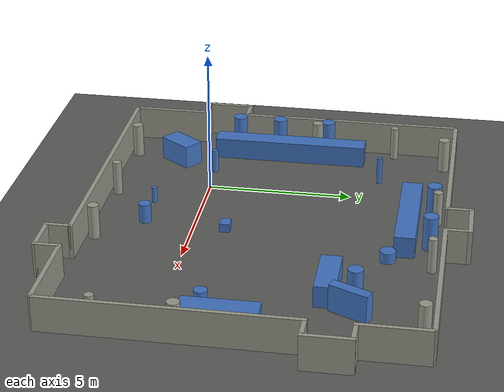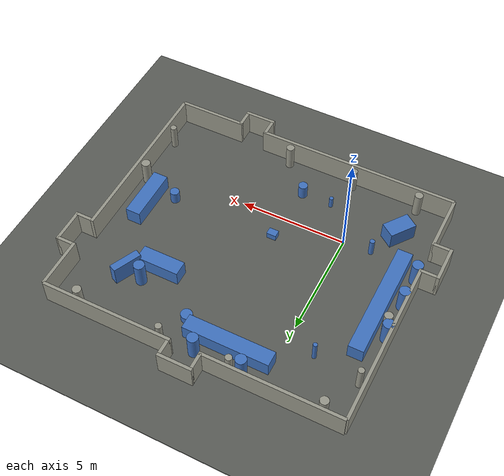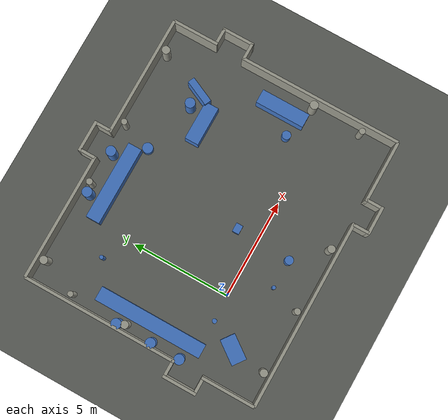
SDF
<sdf version="1.9">
 <world name="default">
  <model name="track_feature">
   <static>true</static>
   <link name="feature_link">
    <collision name="feat_box_2_collision">
     <pose>7.757710 5.823984 0.472198 0.000000 0.000000 1.136605</pose>
     <geometry><box><size>1.369153 0.357167 0.944397</size></box></geometry>
    </collision>
    <visual name="feat_box_2_visual">
     <pose>7.757710 5.823984 0.472198 0.000000 0.000000 1.136605</pose>
     <geometry><box><size>1.369153 0.357167 0.944397</size></box></geometry>
     <material><ambient>0.25 0.45 0.75 1</ambient><diffuse>0.25 0.45 0.75 1</diffuse></material>
    </visual>
    <collision name="feat_box_6_collision">
     <pose>-2.024471 -1.446810 0.414715 0.000000 0.000000 0.939065</pose>
     <geometry><box><size>1.286521 0.748022 0.829431</size></box></geometry>
    </collision>
    <visual name="feat_box_6_visual">
     <pose>-2.024471 -1.446810 0.414715 0.000000 0.000000 0.939065</pose>
     <geometry><box><size>1.286521 0.748022 0.829431</size></box></geometry>
     <material><ambient>0.25 0.45 0.75 1</ambient><diffuse>0.25 0.45 0.75 1</diffuse></material>
    </visual>
    <collision name="landmark_0_collision">
     <pose>-2.800000 2.500000 0.375000 0.000000 0.000000 0.000000</pose>
     <geometry><box><size>0.700000 5.500000 0.750000</size></box></geometry>
    </collision>
    <visual name="landmark_0_visual">
     <pose>-2.800000 2.500000 0.375000 0.000000 0.000000 0.000000</pose>
     <geometry><box><size>0.700000 5.500000 0.750000</size></box></geometry>
     <material><ambient>0.25 0.45 0.75 1</ambient><diffuse>0.25 0.45 0.75 1</diffuse></material>
    </visual>
    <collision name="landmark_1_collision">
     <pose>2.000000 7.200000 0.375000 0.000000 0.000000 0.000000</pose>
     <geometry><box><size>4.000000 0.700000 0.750000</size></box></geometry>
    </collision>
    <visual name="landmark_1_visual">
     <pose>2.000000 7.200000 0.375000 0.000000 0.000000 0.000000</pose>
     <geometry><box><size>4.000000 0.700000 0.750000</size></box></geometry>
     <material><ambient>0.25 0.45 0.75 1</ambient><diffuse>0.25 0.45 0.75 1</diffuse></material>
    </visual>
    <collision name="landmark_2_collision">
     <pose>6.500000 5.000000 0.375000 0.000000 0.000000 0.000000</pose>
     <geometry><box><size>2.000000 0.700000 0.750000</size></box></geometry>
    </collision>
    <visual name="landmark_2_visual">
     <pose>6.500000 5.000000 0.375000 0.000000 0.000000 0.000000</pose>
     <geometry><box><size>2.000000 0.700000 0.750000</size></box></geometry>
     <material><ambient>0.25 0.45 0.75 1</ambient><diffuse>0.25 0.45 0.75 1</diffuse></material>
    </visual>
    <collision name="landmark_3_collision">
     <pose>9.000000 2.000000 0.375000 0.000000 0.000000 0.000000</pose>
     <geometry><box><size>0.700000 2.500000 0.750000</size></box></geometry>
    </collision>
    <visual name="landmark_3_visual">
     <pose>9.000000 2.000000 0.375000 0.000000 0.000000 0.000000</pose>
     <geometry><box><size>0.700000 2.500000 0.750000</size></box></geometry>
     <material><ambient>0.25 0.45 0.75 1</ambient><diffuse>0.25 0.45 0.75 1</diffuse></material>
    </visual>
    <collision name="landmark_10_collision">
     <pose>3.000000 1.100000 0.150000 0.000000 0.000000 0.000000</pose>
     <geometry><box><size>0.450000 0.350000 0.300000</size></box></geometry>
    </collision>
    <visual name="landmark_10_visual">
     <pose>3.000000 1.100000 0.150000 0.000000 0.000000 0.000000</pose>
     <geometry><box><size>0.450000 0.350000 0.300000</size></box></geometry>
     <material><ambient>0.25 0.45 0.75 1</ambient><diffuse>0.25 0.45 0.75 1</diffuse></material>
    </visual>
    <collision name="feat_cyl_1_collision">
     <pose>7.984504 1.234789 0.300090 0.000000 0.000000 0.000000</pose>
     <geometry><cylinder><radius>0.217820</radius><length>0.600179</length></cylinder></geometry>
    </collision>
    <visual name="feat_cyl_1_visual">
     <pose>7.984504 1.234789 0.300090 0.000000 0.000000 0.000000</pose>
     <geometry><cylinder><radius>0.217820</radius><length>0.600179</length></cylinder></geometry>
     <material><ambient>0.25 0.45 0.75 1</ambient><diffuse>0.25 0.45 0.75 1</diffuse></material>
    </visual>
    <collision name="feat_cyl_3_collision">
     <pose>2.834560 -1.722751 0.340881 0.000000 0.000000 0.000000</pose>
     <geometry><cylinder><radius>0.213408</radius><length>0.681762</length></cylinder></geometry>
    </collision>
    <visual name="feat_cyl_3_visual">
     <pose>2.834560 -1.722751 0.340881 0.000000 0.000000 0.000000</pose>
     <geometry><cylinder><radius>0.213408</radius><length>0.681762</length></cylinder></geometry>
     <material><ambient>0.25 0.45 0.75 1</ambient><diffuse>0.25 0.45 0.75 1</diffuse></material>
    </visual>
    <collision name="feat_cyl_4_collision">
     <pose>-1.305083 -0.057571 0.416565 0.000000 0.000000 0.000000</pose>
     <geometry><cylinder><radius>0.114796</radius><length>0.833129</length></cylinder></geometry>
    </collision>
    <visual name="feat_cyl_4_visual">
     <pose>-1.305083 -0.057571 0.416565 0.000000 0.000000 0.000000</pose>
     <geometry><cylinder><radius>0.114796</radius><length>0.833129</length></cylinder></geometry>
     <material><ambient>0.25 0.45 0.75 1</ambient><diffuse>0.25 0.45 0.75 1</diffuse></material>
    </visual>
    <collision name="feat_cyl_5_collision">
     <pose>4.268548 6.696389 0.189830 0.000000 0.000000 0.000000</pose>
     <geometry><cylinder><radius>0.263632</radius><length>0.379660</length></cylinder></geometry>
    </collision>
    <visual name="feat_cyl_5_visual">
     <pose>4.268548 6.696389 0.189830 0.000000 0.000000 0.000000</pose>
     <geometry><cylinder><radius>0.263632</radius><length>0.379660</length></cylinder></geometry>
     <material><ambient>0.25 0.45 0.75 1</ambient><diffuse>0.25 0.45 0.75 1</diffuse></material>
    </visual>
    <collision name="feat_cyl_7_collision">
     <pose>-1.298939 5.929700 0.489099 0.000000 0.000000 0.000000</pose>
     <geometry><cylinder><radius>0.096327</radius><length>0.978199</length></cylinder></geometry>
    </collision>
    <visual name="feat_cyl_7_visual">
     <pose>-1.298939 5.929700 0.489099 0.000000 0.000000 0.000000</pose>
     <geometry><cylinder><radius>0.096327</radius><length>0.978199</length></cylinder></geometry>
     <material><ambient>0.25 0.45 0.75 1</ambient><diffuse>0.25 0.45 0.75 1</diffuse></material>
    </visual>
    <collision name="feat_cyl_8_collision">
     <pose>1.389119 -1.712532 0.274791 0.000000 0.000000 0.000000</pose>
     <geometry><cylinder><radius>0.094864</radius><length>0.549582</length></cylinder></geometry>
    </collision>
    <visual name="feat_cyl_8_visual">
     <pose>1.389119 -1.712532 0.274791 0.000000 0.000000 0.000000</pose>
     <geometry><cylinder><radius>0.094864</radius><length>0.549582</length></cylinder></geometry>
     <material><ambient>0.25 0.45 0.75 1</ambient><diffuse>0.25 0.45 0.75 1</diffuse></material>
    </visual>
    <collision name="landmark_4_collision">
     <pose>-3.600000 0.500000 0.600000 0.000000 0.000000 0.000000</pose>
     <geometry><cylinder><radius>0.250000</radius><length>1.200000</length></cylinder></geometry>
    </collision>
    <visual name="landmark_4_visual">
     <pose>-3.600000 0.500000 0.600000 0.000000 0.000000 0.000000</pose>
     <geometry><cylinder><radius>0.250000</radius><length>1.200000</length></cylinder></geometry>
     <material><ambient>0.25 0.45 0.75 1</ambient><diffuse>0.25 0.45 0.75 1</diffuse></material>
    </visual>
    <collision name="landmark_5_collision">
     <pose>-3.600000 2.000000 0.600000 0.000000 0.000000 0.000000</pose>
     <geometry><cylinder><radius>0.250000</radius><length>1.200000</length></cylinder></geometry>
    </collision>
    <visual name="landmark_5_visual">
     <pose>-3.600000 2.000000 0.600000 0.000000 0.000000 0.000000</pose>
     <geometry><cylinder><radius>0.250000</radius><length>1.200000</length></cylinder></geometry>
     <material><ambient>0.25 0.45 0.75 1</ambient><diffuse>0.25 0.45 0.75 1</diffuse></material>
    </visual>
    <collision name="landmark_6_collision">
     <pose>-3.600000 3.800000 0.600000 0.000000 0.000000 0.000000</pose>
     <geometry><cylinder><radius>0.250000</radius><length>1.200000</length></cylinder></geometry>
    </collision>
    <visual name="landmark_6_visual">
     <pose>-3.600000 3.800000 0.600000 0.000000 0.000000 0.000000</pose>
     <geometry><cylinder><radius>0.250000</radius><length>1.200000</length></cylinder></geometry>
     <material><ambient>0.25 0.45 0.75 1</ambient><diffuse>0.25 0.45 0.75 1</diffuse></material>
    </visual>
    <collision name="landmark_7_collision">
     <pose>1.000000 8.000000 0.600000 0.000000 0.000000 0.000000</pose>
     <geometry><cylinder><radius>0.250000</radius><length>1.200000</length></cylinder></geometry>
    </collision>
    <visual name="landmark_7_visual">
     <pose>1.000000 8.000000 0.600000 0.000000 0.000000 0.000000</pose>
     <geometry><cylinder><radius>0.250000</radius><length>1.200000</length></cylinder></geometry>
     <material><ambient>0.25 0.45 0.75 1</ambient><diffuse>0.25 0.45 0.75 1</diffuse></material>
    </visual>
    <collision name="landmark_8_collision">
     <pose>3.200000 8.000000 0.600000 0.000000 0.000000 0.000000</pose>
     <geometry><cylinder><radius>0.250000</radius><length>1.200000</length></cylinder></geometry>
    </collision>
    <visual name="landmark_8_visual">
     <pose>3.200000 8.000000 0.600000 0.000000 0.000000 0.000000</pose>
     <geometry><cylinder><radius>0.250000</radius><length>1.200000</length></cylinder></geometry>
     <material><ambient>0.25 0.45 0.75 1</ambient><diffuse>0.25 0.45 0.75 1</diffuse></material>
    </visual>
    <collision name="landmark_9_collision">
     <pose>7.000000 5.900000 0.600000 0.000000 0.000000 0.000000</pose>
     <geometry><cylinder><radius>0.250000</radius><length>1.200000</length></cylinder></geometry>
    </collision>
    <visual name="landmark_9_visual">
     <pose>7.000000 5.900000 0.600000 0.000000 0.000000 0.000000</pose>
     <geometry><cylinder><radius>0.250000</radius><length>1.200000</length></cylinder></geometry>
     <material><ambient>0.25 0.45 0.75 1</ambient><diffuse>0.25 0.45 0.75 1</diffuse></material>
    </visual>
   </link>
  </model>
  <model name="track_ground">
   <static>true</static>
   <link name="ground_link">
    <collision name="ground_collision">
     <pose>2.604407 1.885509 -0.025000 0.000000 0.000000 0.000000</pose>
     <geometry><box><size>80.000000 80.000000 0.050000</size></box></geometry>
     <surface>
      <friction><ode><mu>1.2</mu><mu2>1.2</mu2></ode></friction>
      <contact><ode><kp>100000.0</kp><kd>10.0</kd></ode></contact>
     </surface>
    </collision>
    <visual name="ground_visual">
     <pose>2.604407 1.885509 -0.025000 0.000000 0.000000 0.000000</pose>
     <geometry><box><size>80.000000 80.000000 0.050000</size></box></geometry>
     <material><ambient>0.35 0.36 0.34 1</ambient><diffuse>0.35 0.36 0.34 1</diffuse></material>
    </visual>
   </link>
  </model>
  <model name="track_room">
   <static>true</static>
   <link name="room_link">
    <collision name="hall_0_0_collision">
     <pose>0.978934 -3.500000 0.600000 0.000000 0.000000 0.000000</pose>
     <geometry><box><size>9.557868 0.150000 1.200000</size></box></geometry>
    </collision>
    <visual name="hall_0_0_visual">
     <pose>0.978934 -3.500000 0.600000 0.000000 0.000000 0.000000</pose>
     <geometry><box><size>9.557868 0.150000 1.200000</size></box></geometry>
     <material><ambient>0.6 0.6 0.55 1</ambient><diffuse>0.6 0.6 0.55 1</diffuse></material>
    </visual>
    <collision name="hall_0_107_collision">
     <pose>8.510477 -3.500000 0.600000 0.000000 0.000000 0.000000</pose>
     <geometry><box><size>3.179045 0.150000 1.200000</size></box></geometry>
    </collision>
    <visual name="hall_0_107_visual">
     <pose>8.510477 -3.500000 0.600000 0.000000 0.000000 0.000000</pose>
     <geometry><box><size>3.179045 0.150000 1.200000</size></box></geometry>
     <material><ambient>0.6 0.6 0.55 1</ambient><diffuse>0.6 0.6 0.55 1</diffuse></material>
    </visual>
    <collision name="hall_niche_0_collision">
     <pose>6.339411 -4.300000 0.600000 0.000000 0.000000 0.000000</pose>
     <geometry><box><size>1.463087 0.150000 1.200000</size></box></geometry>
    </collision>
    <visual name="hall_niche_0_visual">
     <pose>6.339411 -4.300000 0.600000 0.000000 0.000000 0.000000</pose>
     <geometry><box><size>1.463087 0.150000 1.200000</size></box></geometry>
     <material><ambient>0.6 0.6 0.55 1</ambient><diffuse>0.6 0.6 0.55 1</diffuse></material>
    </visual>
    <collision name="hall_jamb_0_-1_collision">
     <pose>5.682868 -3.900000 0.600000 0.000000 0.000000 0.000000</pose>
     <geometry><box><size>0.150000 0.800000 1.200000</size></box></geometry>
    </collision>
    <visual name="hall_jamb_0_-1_visual">
     <pose>5.682868 -3.900000 0.600000 0.000000 0.000000 0.000000</pose>
     <geometry><box><size>0.150000 0.800000 1.200000</size></box></geometry>
     <material><ambient>0.6 0.6 0.55 1</ambient><diffuse>0.6 0.6 0.55 1</diffuse></material>
    </visual>
    <collision name="hall_jamb_0_1_collision">
     <pose>6.995955 -3.900000 0.600000 0.000000 0.000000 0.000000</pose>
     <geometry><box><size>0.150000 0.800000 1.200000</size></box></geometry>
    </collision>
    <visual name="hall_jamb_0_1_visual">
     <pose>6.995955 -3.900000 0.600000 0.000000 0.000000 0.000000</pose>
     <geometry><box><size>0.150000 0.800000 1.200000</size></box></geometry>
     <material><ambient>0.6 0.6 0.55 1</ambient><diffuse>0.6 0.6 0.55 1</diffuse></material>
    </visual>
    <collision name="hall_1_0_collision">
     <pose>10.100000 0.654623 0.600000 0.000000 0.000000 1.570796</pose>
     <geometry><box><size>8.309245 0.150000 1.200000</size></box></geometry>
    </collision>
    <visual name="hall_1_0_visual">
     <pose>10.100000 0.654623 0.600000 0.000000 0.000000 1.570796</pose>
     <geometry><box><size>8.309245 0.150000 1.200000</size></box></geometry>
     <material><ambient>0.6 0.6 0.55 1</ambient><diffuse>0.6 0.6 0.55 1</diffuse></material>
    </visual>
    <collision name="hall_1_96_collision">
     <pose>10.100000 7.328956 0.600000 0.000000 0.000000 1.570796</pose>
     <geometry><box><size>2.342089 0.150000 1.200000</size></box></geometry>
    </collision>
    <visual name="hall_1_96_visual">
     <pose>10.100000 7.328956 0.600000 0.000000 0.000000 1.570796</pose>
     <geometry><box><size>2.342089 0.150000 1.200000</size></box></geometry>
     <material><ambient>0.6 0.6 0.55 1</ambient><diffuse>0.6 0.6 0.55 1</diffuse></material>
    </visual>
    <collision name="hall_niche_1_collision">
     <pose>10.900000 5.483578 0.600000 0.000000 0.000000 1.570796</pose>
     <geometry><box><size>1.648666 0.150000 1.200000</size></box></geometry>
    </collision>
    <visual name="hall_niche_1_visual">
     <pose>10.900000 5.483578 0.600000 0.000000 0.000000 1.570796</pose>
     <geometry><box><size>1.648666 0.150000 1.200000</size></box></geometry>
     <material><ambient>0.6 0.6 0.55 1</ambient><diffuse>0.6 0.6 0.55 1</diffuse></material>
    </visual>
    <collision name="hall_jamb_1_-1_collision">
     <pose>10.500000 4.734245 0.600000 0.000000 0.000000 1.570796</pose>
     <geometry><box><size>0.150000 0.800000 1.200000</size></box></geometry>
    </collision>
    <visual name="hall_jamb_1_-1_visual">
     <pose>10.500000 4.734245 0.600000 0.000000 0.000000 1.570796</pose>
     <geometry><box><size>0.150000 0.800000 1.200000</size></box></geometry>
     <material><ambient>0.6 0.6 0.55 1</ambient><diffuse>0.6 0.6 0.55 1</diffuse></material>
    </visual>
    <collision name="hall_jamb_1_1_collision">
     <pose>10.500000 6.232911 0.600000 0.000000 0.000000 1.570796</pose>
     <geometry><box><size>0.150000 0.800000 1.200000</size></box></geometry>
    </collision>
    <visual name="hall_jamb_1_1_visual">
     <pose>10.500000 6.232911 0.600000 0.000000 0.000000 1.570796</pose>
     <geometry><box><size>0.150000 0.800000 1.200000</size></box></geometry>
     <material><ambient>0.6 0.6 0.55 1</ambient><diffuse>0.6 0.6 0.55 1</diffuse></material>
    </visual>
    <collision name="hall_2_0_collision">
     <pose>7.025139 8.500000 0.600000 0.000000 0.000000 3.141593</pose>
     <geometry><box><size>6.149723 0.150000 1.200000</size></box></geometry>
    </collision>
    <visual name="hall_2_0_visual">
     <pose>7.025139 8.500000 0.600000 0.000000 0.000000 3.141593</pose>
     <geometry><box><size>6.149723 0.150000 1.200000</size></box></geometry>
     <material><ambient>0.6 0.6 0.55 1</ambient><diffuse>0.6 0.6 0.55 1</diffuse></material>
    </visual>
    <collision name="hall_2_74_collision">
     <pose>-0.582514 8.500000 0.600000 0.000000 0.000000 3.141593</pose>
     <geometry><box><size>6.434973 0.150000 1.200000</size></box></geometry>
    </collision>
    <visual name="hall_2_74_visual">
     <pose>-0.582514 8.500000 0.600000 0.000000 0.000000 3.141593</pose>
     <geometry><box><size>6.434973 0.150000 1.200000</size></box></geometry>
     <material><ambient>0.6 0.6 0.55 1</ambient><diffuse>0.6 0.6 0.55 1</diffuse></material>
    </visual>
    <collision name="hall_niche_2_collision">
     <pose>3.292625 9.300000 0.600000 0.000000 0.000000 3.141593</pose>
     <geometry><box><size>1.615304 0.150000 1.200000</size></box></geometry>
    </collision>
    <visual name="hall_niche_2_visual">
     <pose>3.292625 9.300000 0.600000 0.000000 0.000000 3.141593</pose>
     <geometry><box><size>1.615304 0.150000 1.200000</size></box></geometry>
     <material><ambient>0.6 0.6 0.55 1</ambient><diffuse>0.6 0.6 0.55 1</diffuse></material>
    </visual>
    <collision name="hall_jamb_2_-1_collision">
     <pose>4.025277 8.900000 0.600000 0.000000 0.000000 3.141593</pose>
     <geometry><box><size>0.150000 0.800000 1.200000</size></box></geometry>
    </collision>
    <visual name="hall_jamb_2_-1_visual">
     <pose>4.025277 8.900000 0.600000 0.000000 0.000000 3.141593</pose>
     <geometry><box><size>0.150000 0.800000 1.200000</size></box></geometry>
     <material><ambient>0.6 0.6 0.55 1</ambient><diffuse>0.6 0.6 0.55 1</diffuse></material>
    </visual>
    <collision name="hall_jamb_2_1_collision">
     <pose>2.559973 8.900000 0.600000 0.000000 0.000000 3.141593</pose>
     <geometry><box><size>0.150000 0.800000 1.200000</size></box></geometry>
    </collision>
    <visual name="hall_jamb_2_1_visual">
     <pose>2.559973 8.900000 0.600000 0.000000 0.000000 3.141593</pose>
     <geometry><box><size>0.150000 0.800000 1.200000</size></box></geometry>
     <material><ambient>0.6 0.6 0.55 1</ambient><diffuse>0.6 0.6 0.55 1</diffuse></material>
    </visual>
    <collision name="hall_3_0_collision">
     <pose>-3.800000 4.570141 0.600000 0.000000 0.000000 -1.570796</pose>
     <geometry><box><size>7.859719 0.150000 1.200000</size></box></geometry>
    </collision>
    <visual name="hall_3_0_visual">
     <pose>-3.800000 4.570141 0.600000 0.000000 0.000000 -1.570796</pose>
     <geometry><box><size>7.859719 0.150000 1.200000</size></box></geometry>
     <material><ambient>0.6 0.6 0.55 1</ambient><diffuse>0.6 0.6 0.55 1</diffuse></material>
    </visual>
    <collision name="hall_3_92_collision">
     <pose>-3.800000 -2.143455 0.600000 0.000000 0.000000 -1.570796</pose>
     <geometry><box><size>2.713090 0.150000 1.200000</size></box></geometry>
    </collision>
    <visual name="hall_3_92_visual">
     <pose>-3.800000 -2.143455 0.600000 0.000000 0.000000 -1.570796</pose>
     <geometry><box><size>2.713090 0.150000 1.200000</size></box></geometry>
     <material><ambient>0.6 0.6 0.55 1</ambient><diffuse>0.6 0.6 0.55 1</diffuse></material>
    </visual>
    <collision name="hall_niche_3_collision">
     <pose>-4.600000 -0.073314 0.600000 0.000000 0.000000 -1.570796</pose>
     <geometry><box><size>1.727191 0.150000 1.200000</size></box></geometry>
    </collision>
    <visual name="hall_niche_3_visual">
     <pose>-4.600000 -0.073314 0.600000 0.000000 0.000000 -1.570796</pose>
     <geometry><box><size>1.727191 0.150000 1.200000</size></box></geometry>
     <material><ambient>0.6 0.6 0.55 1</ambient><diffuse>0.6 0.6 0.55 1</diffuse></material>
    </visual>
    <collision name="hall_jamb_3_-1_collision">
     <pose>-4.200000 0.715281 0.600000 0.000000 0.000000 -1.570796</pose>
     <geometry><box><size>0.150000 0.800000 1.200000</size></box></geometry>
    </collision>
    <visual name="hall_jamb_3_-1_visual">
     <pose>-4.200000 0.715281 0.600000 0.000000 0.000000 -1.570796</pose>
     <geometry><box><size>0.150000 0.800000 1.200000</size></box></geometry>
     <material><ambient>0.6 0.6 0.55 1</ambient><diffuse>0.6 0.6 0.55 1</diffuse></material>
    </visual>
    <collision name="hall_jamb_3_1_collision">
     <pose>-4.200000 -0.861910 0.600000 0.000000 0.000000 -1.570796</pose>
     <geometry><box><size>0.150000 0.800000 1.200000</size></box></geometry>
    </collision>
    <visual name="hall_jamb_3_1_visual">
     <pose>-4.200000 -0.861910 0.600000 0.000000 0.000000 -1.570796</pose>
     <geometry><box><size>0.150000 0.800000 1.200000</size></box></geometry>
     <material><ambient>0.6 0.6 0.55 1</ambient><diffuse>0.6 0.6 0.55 1</diffuse></material>
    </visual>
    <collision name="column_0_15_collision">
     <pose>-2.256256 -3.150000 0.600000 0.000000 0.000000 0.000000</pose>
     <geometry><cylinder><radius>0.188989</radius><length>1.200000</length></cylinder></geometry>
    </collision>
    <visual name="column_0_15_visual">
     <pose>-2.256256 -3.150000 0.600000 0.000000 0.000000 0.000000</pose>
     <geometry><cylinder><radius>0.188989</radius><length>1.200000</length></cylinder></geometry>
     <material><ambient>0.6 0.6 0.55 1</ambient><diffuse>0.6 0.6 0.55 1</diffuse></material>
    </visual>
    <collision name="column_0_47_collision">
     <pose>0.918113 -3.150000 0.600000 0.000000 0.000000 0.000000</pose>
     <geometry><cylinder><radius>0.156819</radius><length>1.200000</length></cylinder></geometry>
    </collision>
    <visual name="column_0_47_visual">
     <pose>0.918113 -3.150000 0.600000 0.000000 0.000000 0.000000</pose>
     <geometry><cylinder><radius>0.156819</radius><length>1.200000</length></cylinder></geometry>
     <material><ambient>0.6 0.6 0.55 1</ambient><diffuse>0.6 0.6 0.55 1</diffuse></material>
    </visual>
    <collision name="column_0_79_collision">
     <pose>4.186807 -3.150000 0.600000 0.000000 0.000000 0.000000</pose>
     <geometry><cylinder><radius>0.189532</radius><length>1.200000</length></cylinder></geometry>
    </collision>
    <visual name="column_0_79_visual">
     <pose>4.186807 -3.150000 0.600000 0.000000 0.000000 0.000000</pose>
     <geometry><cylinder><radius>0.189532</radius><length>1.200000</length></cylinder></geometry>
     <material><ambient>0.6 0.6 0.55 1</ambient><diffuse>0.6 0.6 0.55 1</diffuse></material>
    </visual>
    <collision name="column_1_17_collision">
     <pose>9.750000 -1.787275 0.600000 0.000000 0.000000 0.000000</pose>
     <geometry><cylinder><radius>0.148920</radius><length>1.200000</length></cylinder></geometry>
    </collision>
    <visual name="column_1_17_visual">
     <pose>9.750000 -1.787275 0.600000 0.000000 0.000000 0.000000</pose>
     <geometry><cylinder><radius>0.148920</radius><length>1.200000</length></cylinder></geometry>
     <material><ambient>0.6 0.6 0.55 1</ambient><diffuse>0.6 0.6 0.55 1</diffuse></material>
    </visual>
    <collision name="column_1_42_collision">
     <pose>9.750000 0.769416 0.600000 0.000000 0.000000 0.000000</pose>
     <geometry><cylinder><radius>0.210949</radius><length>1.200000</length></cylinder></geometry>
    </collision>
    <visual name="column_1_42_visual">
     <pose>9.750000 0.769416 0.600000 0.000000 0.000000 0.000000</pose>
     <geometry><cylinder><radius>0.210949</radius><length>1.200000</length></cylinder></geometry>
     <material><ambient>0.6 0.6 0.55 1</ambient><diffuse>0.6 0.6 0.55 1</diffuse></material>
    </visual>
    <collision name="column_2_14_collision">
     <pose>8.666504 8.150000 0.600000 0.000000 0.000000 0.000000</pose>
     <geometry><cylinder><radius>0.202840</radius><length>1.200000</length></cylinder></geometry>
    </collision>
    <visual name="column_2_14_visual">
     <pose>8.666504 8.150000 0.600000 0.000000 0.000000 0.000000</pose>
     <geometry><cylinder><radius>0.202840</radius><length>1.200000</length></cylinder></geometry>
     <material><ambient>0.6 0.6 0.55 1</ambient><diffuse>0.6 0.6 0.55 1</diffuse></material>
    </visual>
    <collision name="column_2_53_collision">
     <pose>4.709868 8.150000 0.600000 0.000000 0.000000 0.000000</pose>
     <geometry><cylinder><radius>0.149667</radius><length>1.200000</length></cylinder></geometry>
    </collision>
    <visual name="column_2_53_visual">
     <pose>4.709868 8.150000 0.600000 0.000000 0.000000 0.000000</pose>
     <geometry><cylinder><radius>0.149667</radius><length>1.200000</length></cylinder></geometry>
     <material><ambient>0.6 0.6 0.55 1</ambient><diffuse>0.6 0.6 0.55 1</diffuse></material>
    </visual>
    <collision name="column_2_86_collision">
     <pose>1.472220 8.150000 0.600000 0.000000 0.000000 0.000000</pose>
     <geometry><cylinder><radius>0.155623</radius><length>1.200000</length></cylinder></geometry>
    </collision>
    <visual name="column_2_86_visual">
     <pose>1.472220 8.150000 0.600000 0.000000 0.000000 0.000000</pose>
     <geometry><cylinder><radius>0.155623</radius><length>1.200000</length></cylinder></geometry>
     <material><ambient>0.6 0.6 0.55 1</ambient><diffuse>0.6 0.6 0.55 1</diffuse></material>
    </visual>
    <collision name="column_2_128_collision">
     <pose>-2.704519 8.150000 0.600000 0.000000 0.000000 0.000000</pose>
     <geometry><cylinder><radius>0.196957</radius><length>1.200000</length></cylinder></geometry>
    </collision>
    <visual name="column_2_128_visual">
     <pose>-2.704519 8.150000 0.600000 0.000000 0.000000 0.000000</pose>
     <geometry><cylinder><radius>0.196957</radius><length>1.200000</length></cylinder></geometry>
     <material><ambient>0.6 0.6 0.55 1</ambient><diffuse>0.6 0.6 0.55 1</diffuse></material>
    </visual>
    <collision name="column_3_22_collision">
     <pose>-3.450000 6.292686 0.600000 0.000000 0.000000 0.000000</pose>
     <geometry><cylinder><radius>0.139754</radius><length>1.200000</length></cylinder></geometry>
    </collision>
    <visual name="column_3_22_visual">
     <pose>-3.450000 6.292686 0.600000 0.000000 0.000000 0.000000</pose>
     <geometry><cylinder><radius>0.139754</radius><length>1.200000</length></cylinder></geometry>
     <material><ambient>0.6 0.6 0.55 1</ambient><diffuse>0.6 0.6 0.55 1</diffuse></material>
    </visual>
    <collision name="column_3_50_collision">
     <pose>-3.450000 3.435501 0.600000 0.000000 0.000000 0.000000</pose>
     <geometry><cylinder><radius>0.193421</radius><length>1.200000</length></cylinder></geometry>
    </collision>
    <visual name="column_3_50_visual">
     <pose>-3.450000 3.435501 0.600000 0.000000 0.000000 0.000000</pose>
     <geometry><cylinder><radius>0.193421</radius><length>1.200000</length></cylinder></geometry>
     <material><ambient>0.6 0.6 0.55 1</ambient><diffuse>0.6 0.6 0.55 1</diffuse></material>
    </visual>
   </link>
  </model>
 </world>
</sdf>
